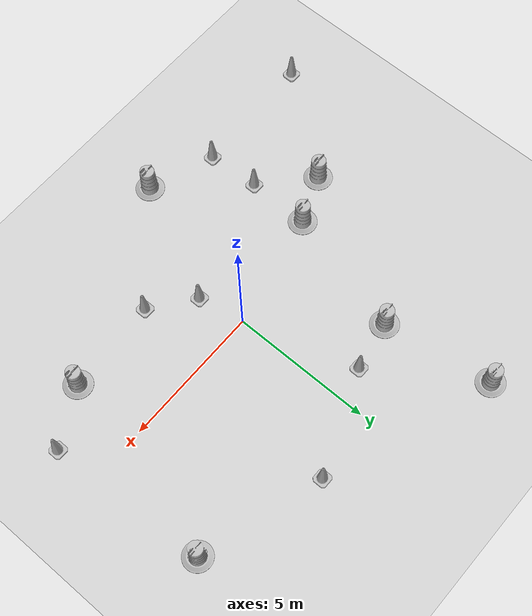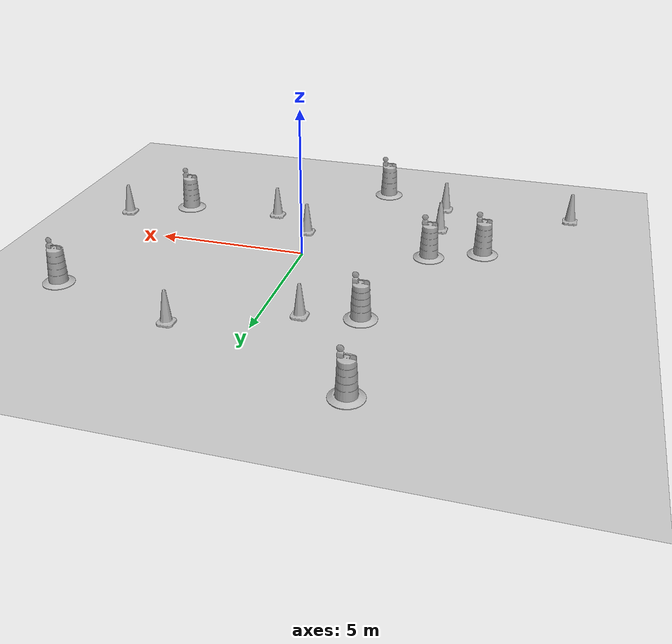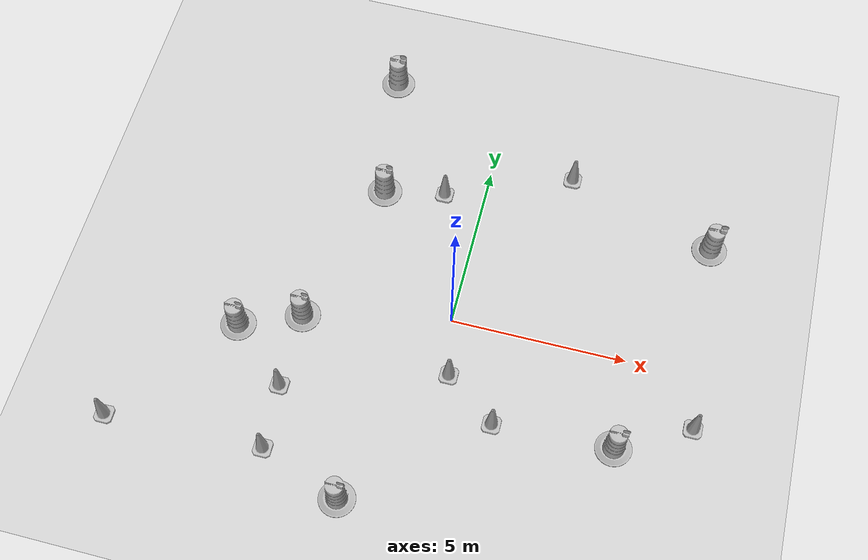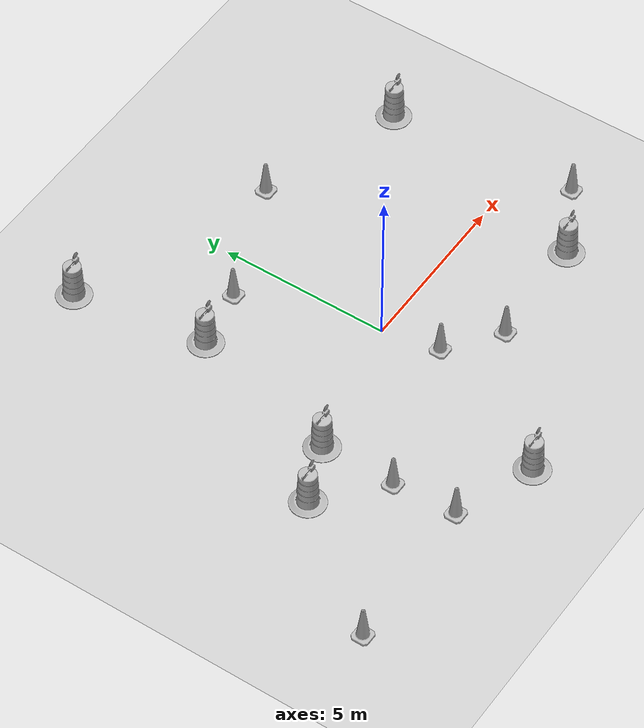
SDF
<sdf version="1.7">
 <world name="default">
  <light name="sun" type="directional">
   <pose>0 0 10 0 -0 0</pose>
   <diffuse>0.8 0.8 0.8 1</diffuse>
   <specular>0.2 0.2 0.2 1</specular>
   <attenuation>
    <range>1000</range>
    <constant>0.9</constant>
    <linear>0.01</linear>
    <quadratic>0.001</quadratic>
   </attenuation>
   <direction>-0.5 0.1 -0.9</direction>
   <spot><inner_angle>0</inner_angle><outer_angle>0</outer_angle><falloff>0</falloff></spot>
  </light>
  <model name="ground_plane">
   <static>1</static>
   <link name="link">
    <collision name="collision">
     <geometry><plane><normal>0 0 1</normal><size>100 100</size></plane></geometry>
     <surface>
      <contact><collide_bitmask>65535</collide_bitmask></contact>
      <friction><ode><mu>100</mu><mu2>50</mu2></ode></friction>
     </surface>
    </collision>
    <visual name="visual">
     <cast_shadows>0</cast_shadows>
     <geometry><plane><normal>0 0 1</normal><size>100 100</size></plane></geometry>
     <material>
      <script><uri>file://media/materials/scripts/gazebo.material</uri><name>Gazebo/Grey</name></script>
     </material>
    </visual>
   </link>
  </model>
  <gravity>0 0 -9.8</gravity>
  <magnetic_field>6e-06 2.3e-05 -4.2e-05</magnetic_field>
  <atmosphere type="adiabatic"/>
  <physics type="ode">
   <max_step_size>0.001</max_step_size>
   <real_time_factor>1</real_time_factor>
   <real_time_update_rate>1000</real_time_update_rate>
  </physics>
  <scene><ambient>0.4 0.4 0.4 1</ambient><background>0.7 0.7 0.7 1</background><shadows>1</shadows></scene>
  <audio><device>default</device></audio>
  <spherical_coordinates>
   <surface_model>EARTH_WGS84</surface_model>
   <latitude_deg>0</latitude_deg>
   <longitude_deg>0</longitude_deg>
   <elevation>0</elevation>
   <heading_deg>0</heading_deg>
  </spherical_coordinates>
  <model name="Construction Barrel">
   <link name="link">
    <inertial>
     <pose>0 0 0.4 0 -0 0</pose>
     <mass>500</mass>
     <inertia><ixx>51.2096</ixx><iyy>51.2096</iyy><izz>25</izz><ixy>0</ixy><ixz>0</ixz><iyz>0</iyz></inertia>
    </inertial>
    <collision name="collision">
     <geometry><mesh><uri>model://construction_barrel/meshes/construction_barrel.dae</uri></mesh></geometry>
    </collision>
    <visual name="visual">
     <geometry><mesh><uri>model://construction_barrel/meshes/construction_barrel.dae</uri></mesh></geometry>
    </visual>
   </link>
   <pose>-4.12924 -0.889042 0 0 0 -2.6e-05</pose>
  </model>
  <model name="Construction Barrel_0">
   <link name="link">
    <inertial>
     <pose>0 0 0.4 0 -0 0</pose>
     <mass>500</mass>
     <inertia><ixx>51.2096</ixx><iyy>51.2096</iyy><izz>25</izz><ixy>0</ixy><ixz>0</ixz><iyz>0</iyz></inertia>
    </inertial>
    <collision name="collision">
     <geometry><mesh><uri>model://construction_barrel/meshes/construction_barrel.dae</uri></mesh></geometry>
    </collision>
    <visual name="visual">
     <geometry><mesh><uri>model://construction_barrel/meshes/construction_barrel.dae</uri></mesh></geometry>
    </visual>
   </link>
   <pose>-5.81652 -1.59642 -1e-06 5e-06 -3e-06 -2.1e-05</pose>
  </model>
  <model name="Construction Cone">
   <link name="link">
    <collision name="collision">
     <geometry>
      <mesh><scale>10 10 10</scale><uri>model://construction_cone/meshes/construction_cone.dae</uri></mesh>
     </geometry>
    </collision>
    <visual name="visual">
     <geometry>
      <mesh><scale>10 10 10</scale><uri>model://construction_cone/meshes/construction_cone.dae</uri></mesh>
     </geometry>
    </visual>
    <inertial>
     <inertia><ixx>1</ixx><ixy>0</ixy><ixz>0</ixz><iyy>1</iyy><iyz>0</iyz><izz>1</izz></inertia>
     <mass>1</mass>
    </inertial>
   </link>
   <pose>0.323625 -1.64189 -1e-05 0 -0 0</pose>
  </model>
  <model name="Construction Cone_0">
   <link name="link">
    <collision name="collision">
     <geometry>
      <mesh><scale>10 10 10</scale><uri>model://construction_cone/meshes/construction_cone.dae</uri></mesh>
     </geometry>
    </collision>
    <visual name="visual">
     <geometry>
      <mesh><scale>10 10 10</scale><uri>model://construction_cone/meshes/construction_cone.dae</uri></mesh>
     </geometry>
    </visual>
    <inertial>
     <inertia><ixx>1</ixx><ixy>0</ixy><ixz>0</ixz><iyy>1</iyy><iyz>0</iyz><izz>1</izz></inertia>
     <mass>1</mass>
    </inertial>
   </link>
   <pose>-4.02189 -4.93429 -0 0 -0 0</pose>
  </model>
  <model name="Construction Barrel_1">
   <link name="link">
    <inertial>
     <pose>0 0 0.4 0 -0 0</pose>
     <mass>500</mass>
     <inertia><ixx>51.2096</ixx><iyy>51.2096</iyy><izz>25</izz><ixy>0</ixy><ixz>0</ixz><iyz>0</iyz></inertia>
    </inertial>
    <collision name="collision">
     <geometry><mesh><uri>model://construction_barrel/meshes/construction_barrel.dae</uri></mesh></geometry>
    </collision>
    <visual name="visual">
     <geometry><mesh><uri>model://construction_barrel/meshes/construction_barrel.dae</uri></mesh></geometry>
    </visual>
   </link>
   <pose>-1.69694 -5.78334 0 1e-06 1e-06 -2e-05</pose>
  </model>
  <model name="Construction Cone_1">
   <link name="link">
    <collision name="collision">
     <geometry>
      <mesh><scale>10 10 10</scale><uri>model://construction_cone/meshes/construction_cone.dae</uri></mesh>
     </geometry>
    </collision>
    <visual name="visual">
     <geometry>
      <mesh><scale>10 10 10</scale><uri>model://construction_cone/meshes/construction_cone.dae</uri></mesh>
     </geometry>
    </visual>
    <inertial>
     <inertia><ixx>1</ixx><ixy>0</ixy><ixz>0</ixz><iyy>1</iyy><iyz>0</iyz><izz>1</izz></inertia>
     <mass>1</mass>
    </inertial>
   </link>
   <pose>-4.13052 -3.08754 -0 0 -1e-06 0</pose>
  </model>
  <model name="Construction Cone_2">
   <link name="link">
    <collision name="collision">
     <geometry>
      <mesh><scale>10 10 10</scale><uri>model://construction_cone/meshes/construction_cone.dae</uri></mesh>
     </geometry>
    </collision>
    <visual name="visual">
     <geometry>
      <mesh><scale>10 10 10</scale><uri>model://construction_cone/meshes/construction_cone.dae</uri></mesh>
     </geometry>
    </visual>
    <inertial>
     <inertia><ixx>1</ixx><ixy>0</ixy><ixz>0</ixz><iyy>1</iyy><iyz>0</iyz><izz>1</izz></inertia>
     <mass>1</mass>
    </inertial>
   </link>
   <pose>1.78843 -2.75265 -0 0 -0 0</pose>
  </model>
  <model name="Construction Barrel_2">
   <link name="link">
    <inertial>
     <pose>0 0 0.4 0 -0 0</pose>
     <mass>500</mass>
     <inertia><ixx>51.2096</ixx><iyy>51.2096</iyy><izz>25</izz><ixy>0</ixy><ixz>0</ixz><iyz>0</iyz></inertia>
    </inertial>
    <collision name="collision">
     <geometry><mesh><uri>model://construction_barrel/meshes/construction_barrel.dae</uri></mesh></geometry>
    </collision>
    <visual name="visual">
     <geometry><mesh><uri>model://construction_barrel/meshes/construction_barrel.dae</uri></mesh></geometry>
    </visual>
   </link>
   <pose>-2.9471 3.63694 0 0 1e-06 5.8e-05</pose>
  </model>
  <model name="Construction Cone_3">
   <link name="link">
    <collision name="collision">
     <geometry>
      <mesh><scale>10 10 10</scale><uri>model://construction_cone/meshes/construction_cone.dae</uri></mesh>
     </geometry>
    </collision>
    <visual name="visual">
     <geometry>
      <mesh><scale>10 10 10</scale><uri>model://construction_cone/meshes/construction_cone.dae</uri></mesh>
     </geometry>
    </visual>
    <inertial>
     <inertia><ixx>1</ixx><ixy>0</ixy><ixz>0</ixz><iyy>1</iyy><iyz>0</iyz><izz>1</izz></inertia>
     <mass>1</mass>
    </inertial>
   </link>
   <pose>-8.50474 -5.08432 -0 0 -1e-06 0</pose>
  </model>
  <model name="Construction Barrel_3">
   <link name="link">
    <inertial>
     <pose>0 0 0.4 0 -0 0</pose>
     <mass>500</mass>
     <inertia><ixx>51.2096</ixx><iyy>51.2096</iyy><izz>25</izz><ixy>0</ixy><ixz>0</ixz><iyz>0</iyz></inertia>
    </inertial>
    <collision name="collision">
     <geometry><mesh><uri>model://construction_barrel/meshes/construction_barrel.dae</uri></mesh></geometry>
    </collision>
    <visual name="visual">
     <geometry><mesh><uri>model://construction_barrel/meshes/construction_barrel.dae</uri></mesh></geometry>
    </visual>
   </link>
   <pose>5.1227 -2.595 -1e-06 2e-06 -1e-06 -1.2e-05</pose>
  </model>
  <model name="Construction Cone_4">
   <link name="link">
    <collision name="collision">
     <geometry>
      <mesh><scale>10 10 10</scale><uri>model://construction_cone/meshes/construction_cone.dae</uri></mesh>
     </geometry>
    </collision>
    <visual name="visual">
     <geometry>
      <mesh><scale>10 10 10</scale><uri>model://construction_cone/meshes/construction_cone.dae</uri></mesh>
     </geometry>
    </visual>
    <inertial>
     <inertia><ixx>1</ixx><ixy>0</ixy><ixz>0</ixz><iyy>1</iyy><iyz>0</iyz><izz>1</izz></inertia>
     <mass>1</mass>
    </inertial>
   </link>
   <pose>2.41245 5.40541 -1e-05 0 -0 0</pose>
  </model>
  <model name="Construction Barrel_4">
   <link name="link">
    <inertial>
     <pose>0 0 0.4 0 -0 0</pose>
     <mass>500</mass>
     <inertia><ixx>51.2096</ixx><iyy>51.2096</iyy><izz>25</izz><ixy>0</ixy><ixz>0</ixz><iyz>0</iyz></inertia>
    </inertial>
    <collision name="collision">
     <geometry><mesh><uri>model://construction_barrel/meshes/construction_barrel.dae</uri></mesh></geometry>
    </collision>
    <visual name="visual">
     <geometry><mesh><uri>model://construction_barrel/meshes/construction_barrel.dae</uri></mesh></geometry>
    </visual>
   </link>
   <pose>6.73427 4.06592 -0 0 0 -9e-06</pose>
  </model>
  <model name="Construction Cone_5">
   <link name="link">
    <collision name="collision">
     <geometry>
      <mesh><scale>10 10 10</scale><uri>model://construction_cone/meshes/construction_cone.dae</uri></mesh>
     </geometry>
    </collision>
    <visual name="visual">
     <geometry>
      <mesh><scale>10 10 10</scale><uri>model://construction_cone/meshes/construction_cone.dae</uri></mesh>
     </geometry>
    </visual>
    <inertial>
     <inertia><ixx>1</ixx><ixy>0</ixy><ixz>0</ixz><iyy>1</iyy><iyz>0</iyz><izz>1</izz></inertia>
     <mass>1</mass>
    </inertial>
   </link>
   <pose>-1.18612 3.97146 -0 0 -1e-06 0</pose>
  </model>
  <model name="Construction Barrel_5">
   <link name="link">
    <inertial>
     <pose>0 0 0.4 0 -0 0</pose>
     <mass>500</mass>
     <inertia><ixx>51.2096</ixx><iyy>51.2096</iyy><izz>25</izz><ixy>0</ixy><ixz>0</ixz><iyz>0</iyz></inertia>
    </inertial>
    <collision name="collision">
     <geometry><mesh><uri>model://construction_barrel/meshes/construction_barrel.dae</uri></mesh></geometry>
    </collision>
    <visual name="visual">
     <geometry><mesh><uri>model://construction_barrel/meshes/construction_barrel.dae</uri></mesh></geometry>
    </visual>
   </link>
   <pose>-3.56186 7.52221 -1e-06 3e-06 -2e-06 -6e-06</pose>
  </model>
  <model name="Construction Cone_6">
   <link name="link">
    <collision name="collision">
     <geometry>
      <mesh><scale>10 10 10</scale><uri>model://construction_cone/meshes/construction_cone.dae</uri></mesh>
     </geometry>
    </collision>
    <visual name="visual">
     <geometry>
      <mesh><scale>10 10 10</scale><uri>model://construction_cone/meshes/construction_cone.dae</uri></mesh>
     </geometry>
    </visual>
    <inertial>
     <inertia><ixx>1</ixx><ixy>0</ixy><ixz>0</ixz><iyy>1</iyy><iyz>0</iyz><izz>1</izz></inertia>
     <mass>1</mass>
    </inertial>
   </link>
   <pose>7.11257 -1.52876 -0 0 -1e-06 0</pose>
  </model>
 </world>
</sdf>
